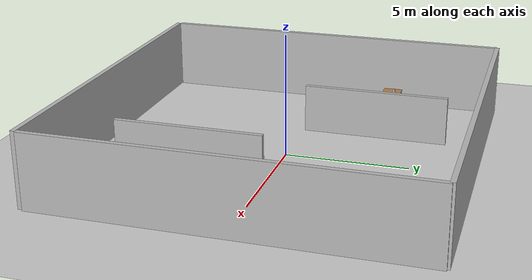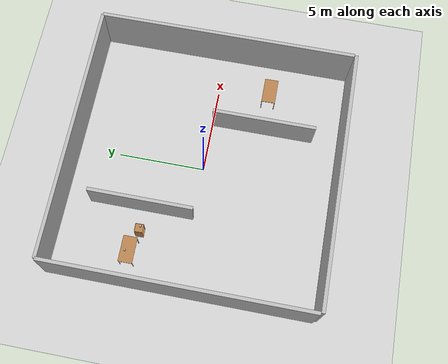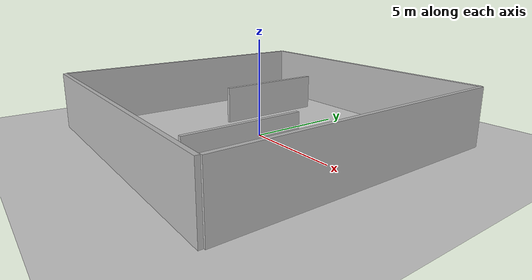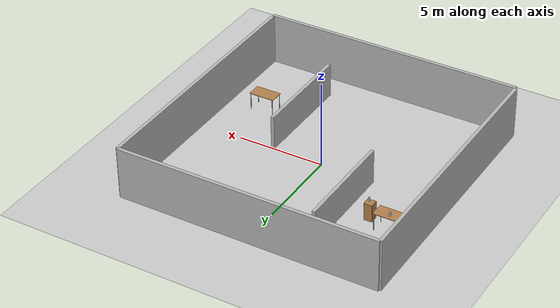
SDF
<sdf version="1.7">
 <world name="default">
  <light name="sun" type="directional">
   <pose>0 0 10 0 -0 0</pose>
   <diffuse>0.8 0.8 0.8 1</diffuse>
   <specular>0.2 0.2 0.2 1</specular>
   <attenuation>
    <range>1000</range>
    <constant>0.9</constant>
    <linear>0.01</linear>
    <quadratic>0.001</quadratic>
   </attenuation>
   <direction>-0.5 0.1 -0.9</direction>
   <spot><inner_angle>0</inner_angle><outer_angle>0</outer_angle><falloff>0</falloff></spot>
  </light>
  <model name="ground_plane">
   <static>1</static>
   <link name="link">
    <collision name="collision">
     <geometry><plane><normal>0 0 1</normal><size>100 100</size></plane></geometry>
     <surface>
      <contact><collide_bitmask>65535</collide_bitmask></contact>
      <friction><ode><mu>100</mu><mu2>50</mu2></ode></friction>
     </surface>
    </collision>
    <visual name="visual">
     <cast_shadows>0</cast_shadows>
     <geometry><plane><normal>0 0 1</normal><size>100 100</size></plane></geometry>
     <material>
      <script><uri>file://media/materials/scripts/gazebo.material</uri><name>Gazebo/Grey</name></script>
     </material>
    </visual>
   </link>
  </model>
  <gravity>0 0 -9.8</gravity>
  <magnetic_field>6e-06 2.3e-05 -4.2e-05</magnetic_field>
  <atmosphere type="adiabatic"/>
  <physics type="ode">
   <max_step_size>0.001</max_step_size>
   <real_time_factor>1</real_time_factor>
   <real_time_update_rate>1000</real_time_update_rate>
  </physics>
  <scene><ambient>0.4 0.4 0.4 1</ambient><background>0.7 0.7 0.7 1</background><shadows>1</shadows></scene>
  <spherical_coordinates>
   <surface_model>EARTH_WGS84</surface_model>
   <latitude_deg>0</latitude_deg>
   <longitude_deg>0</longitude_deg>
   <elevation>0</elevation>
   <heading_deg>0</heading_deg>
  </spherical_coordinates>
  <model name="wall_1">
   <static>1</static>
   <link name="link">
    <pose>0 7.5 1.5 0 -0 0</pose>
    <collision name="collision"><geometry><box><size>15 0.2 3</size></box></geometry></collision>
    <visual name="visual"><geometry><box><size>15 0.2 3</size></box></geometry></visual>
   </link>
  </model>
  <model name="wall_2">
   <pose>0.020741 -0.11076 0 0 -0 0</pose>
   <static>1</static>
   <link name="link">
    <pose>0 -7.5 1.5 0 -0 0</pose>
    <collision name="collision"><geometry><box><size>15 0.2 3</size></box></geometry></collision>
    <visual name="visual"><geometry><box><size>15 0.2 3</size></box></geometry></visual>
   </link>
  </model>
  <model name="wall_3">
   <static>1</static>
   <link name="link">
    <pose>-7.5 0 1.5 0 -0 1.5708</pose>
    <collision name="collision"><geometry><box><size>15 0.2 3</size></box></geometry></collision>
    <visual name="visual"><geometry><box><size>15 0.2 3</size></box></geometry></visual>
   </link>
  </model>
  <model name="wall_4">
   <static>1</static>
   <link name="link">
    <pose>7.5 0 1.5 0 -0 1.5708</pose>
    <collision name="collision"><geometry><box><size>15 0.2 3</size></box></geometry></collision>
    <visual name="visual"><geometry><box><size>15 0.2 3</size></box></geometry></visual>
   </link>
  </model>
  <model name="wall_5">
   <static>1</static>
   <link name="link">
    <pose>3 -3 1 0 -0 1.5708</pose>
    <collision name="collision"><geometry><box><size>6 0.2 2</size></box></geometry></collision>
    <visual name="visual"><geometry><box><size>6 0.2 2</size></box></geometry></visual>
   </link>
  </model>
  <model name="wall_6">
   <static>1</static>
   <link name="link">
    <pose>-3 3 1 0 -0 1.5708</pose>
    <collision name="collision"><geometry><box><size>6 0.2 2</size></box></geometry></collision>
    <visual name="visual"><geometry><box><size>6 0.2 2</size></box></geometry></visual>
   </link>
  </model>
  <audio><device>default</device></audio>
  <model name="table">
   <static>1</static>
   <link name="link">
    <collision name="surface">
     <pose>0 0 1 0 -0 0</pose>
     <geometry><box><size>1.5 0.8 0.03</size></box></geometry>
     <surface><friction><ode><mu>0.6</mu><mu2>0.6</mu2></ode></friction></surface>
    </collision>
    <visual name="visual1">
     <pose>0 0 1 0 -0 0</pose>
     <geometry><box><size>1.5 0.8 0.03</size></box></geometry>
     <material>
      <script><uri>file://media/materials/scripts/gazebo.material</uri><name>Gazebo/Wood</name></script>
     </material>
    </visual>
    <collision name="front_left_leg">
     <pose>0.68 0.38 0.5 0 -0 0</pose>
     <geometry><cylinder><radius>0.02</radius><length>1</length></cylinder></geometry>
    </collision>
    <visual name="front_left_leg">
     <pose>0.68 0.38 0.5 0 -0 0</pose>
     <geometry><cylinder><radius>0.02</radius><length>1</length></cylinder></geometry>
     <material>
      <script><uri>file://media/materials/scripts/gazebo.material</uri><name>Gazebo/Grey</name></script>
     </material>
    </visual>
    <collision name="front_right_leg">
     <pose>0.68 -0.38 0.5 0 -0 0</pose>
     <geometry><cylinder><radius>0.02</radius><length>1</length></cylinder></geometry>
    </collision>
    <visual name="front_right_leg">
     <pose>0.68 -0.38 0.5 0 -0 0</pose>
     <geometry><cylinder><radius>0.02</radius><length>1</length></cylinder></geometry>
     <material>
      <script><uri>file://media/materials/scripts/gazebo.material</uri><name>Gazebo/Grey</name></script>
     </material>
    </visual>
    <collision name="back_right_leg">
     <pose>-0.68 -0.38 0.5 0 -0 0</pose>
     <geometry><cylinder><radius>0.02</radius><length>1</length></cylinder></geometry>
    </collision>
    <visual name="back_right_leg">
     <pose>-0.68 -0.38 0.5 0 -0 0</pose>
     <geometry><cylinder><radius>0.02</radius><length>1</length></cylinder></geometry>
     <material>
      <script><uri>file://media/materials/scripts/gazebo.material</uri><name>Gazebo/Grey</name></script>
     </material>
    </visual>
    <collision name="back_left_leg">
     <pose>-0.68 0.38 0.5 0 -0 0</pose>
     <geometry><cylinder><radius>0.02</radius><length>1</length></cylinder></geometry>
    </collision>
    <visual name="back_left_leg">
     <pose>-0.68 0.38 0.5 0 -0 0</pose>
     <geometry><cylinder><radius>0.02</radius><length>1</length></cylinder></geometry>
     <material>
      <script><uri>file://media/materials/scripts/gazebo.material</uri><name>Gazebo/Grey</name></script>
     </material>
    </visual>
   </link>
   <pose>-5.70582 3.13768 0 0 -0 0</pose>
  </model>
  <model name="table_0">
   <static>1</static>
   <link name="link">
    <collision name="surface">
     <pose>0 0 1 0 -0 0</pose>
     <geometry><box><size>1.5 0.8 0.03</size></box></geometry>
     <surface><friction><ode><mu>0.6</mu><mu2>0.6</mu2></ode></friction></surface>
    </collision>
    <visual name="visual1">
     <pose>0 0 1 0 -0 0</pose>
     <geometry><box><size>1.5 0.8 0.03</size></box></geometry>
     <material>
      <script><uri>file://media/materials/scripts/gazebo.material</uri><name>Gazebo/Wood</name></script>
     </material>
    </visual>
    <collision name="front_left_leg">
     <pose>0.68 0.38 0.5 0 -0 0</pose>
     <geometry><cylinder><radius>0.02</radius><length>1</length></cylinder></geometry>
    </collision>
    <visual name="front_left_leg">
     <pose>0.68 0.38 0.5 0 -0 0</pose>
     <geometry><cylinder><radius>0.02</radius><length>1</length></cylinder></geometry>
     <material>
      <script><uri>file://media/materials/scripts/gazebo.material</uri><name>Gazebo/Grey</name></script>
     </material>
    </visual>
    <collision name="front_right_leg">
     <pose>0.68 -0.38 0.5 0 -0 0</pose>
     <geometry><cylinder><radius>0.02</radius><length>1</length></cylinder></geometry>
    </collision>
    <visual name="front_right_leg">
     <pose>0.68 -0.38 0.5 0 -0 0</pose>
     <geometry><cylinder><radius>0.02</radius><length>1</length></cylinder></geometry>
     <material>
      <script><uri>file://media/materials/scripts/gazebo.material</uri><name>Gazebo/Grey</name></script>
     </material>
    </visual>
    <collision name="back_right_leg">
     <pose>-0.68 -0.38 0.5 0 -0 0</pose>
     <geometry><cylinder><radius>0.02</radius><length>1</length></cylinder></geometry>
    </collision>
    <visual name="back_right_leg">
     <pose>-0.68 -0.38 0.5 0 -0 0</pose>
     <geometry><cylinder><radius>0.02</radius><length>1</length></cylinder></geometry>
     <material>
      <script><uri>file://media/materials/scripts/gazebo.material</uri><name>Gazebo/Grey</name></script>
     </material>
    </visual>
    <collision name="back_left_leg">
     <pose>-0.68 0.38 0.5 0 -0 0</pose>
     <geometry><cylinder><radius>0.02</radius><length>1</length></cylinder></geometry>
    </collision>
    <visual name="back_left_leg">
     <pose>-0.68 0.38 0.5 0 -0 0</pose>
     <geometry><cylinder><radius>0.02</radius><length>1</length></cylinder></geometry>
     <material>
      <script><uri>file://media/materials/scripts/gazebo.material</uri><name>Gazebo/Grey</name></script>
     </material>
    </visual>
   </link>
   <pose>5.33176 -3.0488 0 0 -0 0</pose>
  </model>
  <model name="beer">
   <link name="link">
    <pose>0 0 0.115 0 -0 0</pose>
    <inertial>
     <mass>0.39</mass>
     <inertia><ixx>0.00058</ixx><ixy>0</ixy><ixz>0</ixz><iyy>0.00058</iyy><iyz>0</iyz><izz>0.00019</izz></inertia>
    </inertial>
    <collision name="collision">
     <geometry><cylinder><radius>0.055</radius><length>0.23</length></cylinder></geometry>
    </collision>
    <visual name="visual">
     <geometry><cylinder><radius>0.055</radius><length>0.23</length></cylinder></geometry>
     <material>
      <script>
       <uri>model://beer/materials/scripts</uri>
       <uri>model://beer/materials/textures</uri>
       <name>Beer/Diffuse</name>
      </script>
     </material>
    </visual>
   </link>
   <pose>-5.78901 3.27264 1.01499 1e-06 -2.7e-05 0.000462</pose>
  </model>
  <model name="cabinet">
   <static>1</static>
   <link name="cabinet_bottom_plate">
    <inertial>
     <pose>0 0 -1 0 -0 0</pose>
     <inertia><ixx>2.05</ixx><ixy>0</ixy><ixz>0</ixz><iyy>2.05</iyy><iyz>0</iyz><izz>2.05</izz></inertia>
     <mass>25</mass>
    </inertial>
    <collision name="cabinet_bottom_plate_geom">
     <pose>0 0 0.01 0 -0 0</pose>
     <geometry><box><size>0.45 0.45 0.02</size></box></geometry>
    </collision>
    <visual name="cabinet_bottom_plate_geom_visual">
     <pose>0 0 0.01 0 -0 0</pose>
     <geometry><box><size>0.45 0.45 0.02</size></box></geometry>
     <material>
      <script><uri>file://media/materials/scripts/gazebo.material</uri><name>Gazebo/Wood</name></script>
     </material>
    </visual>
    <collision name="cabinet_bottom_plate_geom_cabinet_back_plate">
     <pose>0.235 0 0.51 0 -0 0</pose>
     <geometry><box><size>0.02 0.45 1.02</size></box></geometry>
    </collision>
    <visual name="cabinet_bottom_plate_geom_cabinet_back_plate_visual">
     <pose>0.235 0 0.51 0 -0 0</pose>
     <geometry><box><size>0.02 0.45 1.02</size></box></geometry>
     <material>
      <script><uri>file://media/materials/scripts/gazebo.material</uri><name>Gazebo/Wood</name></script>
     </material>
    </visual>
    <collision name="cabinet_bottom_plate_geom_cabinet_left_plate">
     <pose>0 0.235 0.51 0 -0 0</pose>
     <geometry><box><size>0.45 0.02 1.02</size></box></geometry>
    </collision>
    <visual name="cabinet_bottom_plate_geom_cabinet_left_plate_visual">
     <pose>0 0.235 0.51 0 -0 0</pose>
     <geometry><box><size>0.45 0.02 1.02</size></box></geometry>
     <material>
      <script><uri>file://media/materials/scripts/gazebo.material</uri><name>Gazebo/Wood</name></script>
     </material>
    </visual>
    <collision name="cabinet_bottom_plate_geom_cabinet_middle_plate">
     <pose>0 0 0.51 0 -0 0</pose>
     <geometry><box><size>0.45 0.45 0.02</size></box></geometry>
    </collision>
    <visual name="cabinet_bottom_plate_geom_cabinet_middle_plate_visual">
     <pose>0 0 0.51 0 -0 0</pose>
     <geometry><box><size>0.45 0.45 0.02</size></box></geometry>
     <material>
      <script><uri>file://media/materials/scripts/gazebo.material</uri><name>Gazebo/Wood</name></script>
     </material>
    </visual>
    <collision name="cabinet_bottom_plate_geom_cabinet_right_plate">
     <pose>0 -0.235 0.51 0 -0 0</pose>
     <geometry><box><size>0.45 0.02 1.02</size></box></geometry>
    </collision>
    <visual name="cabinet_bottom_plate_geom_cabinet_right_plate_visual">
     <pose>0 -0.235 0.51 0 -0 0</pose>
     <geometry><box><size>0.45 0.02 1.02</size></box></geometry>
     <material>
      <script><uri>file://media/materials/scripts/gazebo.material</uri><name>Gazebo/Wood</name></script>
     </material>
    </visual>
    <collision name="cabinet_bottom_plate_geom_cabinet_top_plate">
     <pose>0 0 1.01 0 -0 0</pose>
     <geometry><box><size>0.45 0.45 0.02</size></box></geometry>
    </collision>
    <visual name="cabinet_bottom_plate_geom_cabinet_top_plate_visual">
     <pose>0 0 1.01 0 -0 0</pose>
     <geometry><box><size>0.45 0.45 0.02</size></box></geometry>
     <material>
      <script><uri>file://media/materials/scripts/gazebo.material</uri><name>Gazebo/Wood</name></script>
     </material>
    </visual>
   </link>
   <pose>-4.41222 2.79121 0 0 -0 1.59327</pose>
  </model>
  <model name="beer_0">
   <link name="link">
    <pose>0 0 0.115 0 -0 0</pose>
    <inertial>
     <mass>0.39</mass>
     <inertia><ixx>0.00058</ixx><ixy>0</ixy><ixz>0</ixz><iyy>0.00058</iyy><iyz>0</iyz><izz>0.00019</izz></inertia>
    </inertial>
    <collision name="collision">
     <geometry><cylinder><radius>0.055</radius><length>0.23</length></cylinder></geometry>
    </collision>
    <visual name="visual">
     <geometry><cylinder><radius>0.055</radius><length>0.23</length></cylinder></geometry>
     <material>
      <script>
       <uri>model://beer/materials/scripts</uri>
       <uri>model://beer/materials/textures</uri>
       <name>Beer/Diffuse</name>
      </script>
     </material>
    </visual>
   </link>
   <pose>-4.42875 2.83094 0.019992 2.8e-05 1.7e-05 -0.012567</pose>
  </model>
  <model name="beer_1">
   <link name="link">
    <pose>0 0 0.115 0 -0 0</pose>
    <inertial>
     <mass>0.39</mass>
     <inertia><ixx>0.00058</ixx><ixy>0</ixy><ixz>0</ixz><iyy>0.00058</iyy><iyz>0</iyz><izz>0.00019</izz></inertia>
    </inertial>
    <collision name="collision">
     <geometry><cylinder><radius>0.055</radius><length>0.23</length></cylinder></geometry>
    </collision>
    <visual name="visual">
     <geometry><cylinder><radius>0.055</radius><length>0.23</length></cylinder></geometry>
     <material>
      <script>
       <uri>model://beer/materials/scripts</uri>
       <uri>model://beer/materials/textures</uri>
       <name>Beer/Diffuse</name>
      </script>
     </material>
    </visual>
   </link>
   <pose>-4.44273 2.721 0.519994 6.1e-05 -1e-06 -0.041082</pose>
  </model>
  <model name="beer_1_clone">
   <link name="link">
    <pose>0 0 0.115 0 -0 0</pose>
    <inertial>
     <mass>0.39</mass>
     <inertia><ixx>0.00058</ixx><ixy>0</ixy><ixz>0</ixz><iyy>0.00058</iyy><iyz>0</iyz><izz>0.00019</izz></inertia>
    </inertial>
    <collision name="collision">
     <geometry><cylinder><radius>0.055</radius><length>0.23</length></cylinder></geometry>
    </collision>
    <visual name="visual">
     <geometry><cylinder><radius>0.055</radius><length>0.23</length></cylinder></geometry>
     <material>
      <script>
       <uri>model://beer/materials/scripts</uri>
       <uri>model://beer/materials/textures</uri>
       <name>Beer/Diffuse</name>
      </script>
     </material>
    </visual>
   </link>
   <pose>-4.31732 2.7232 1.01999 7.4e-05 -2e-06 -0.036405</pose>
  </model>
 </world>
</sdf>
